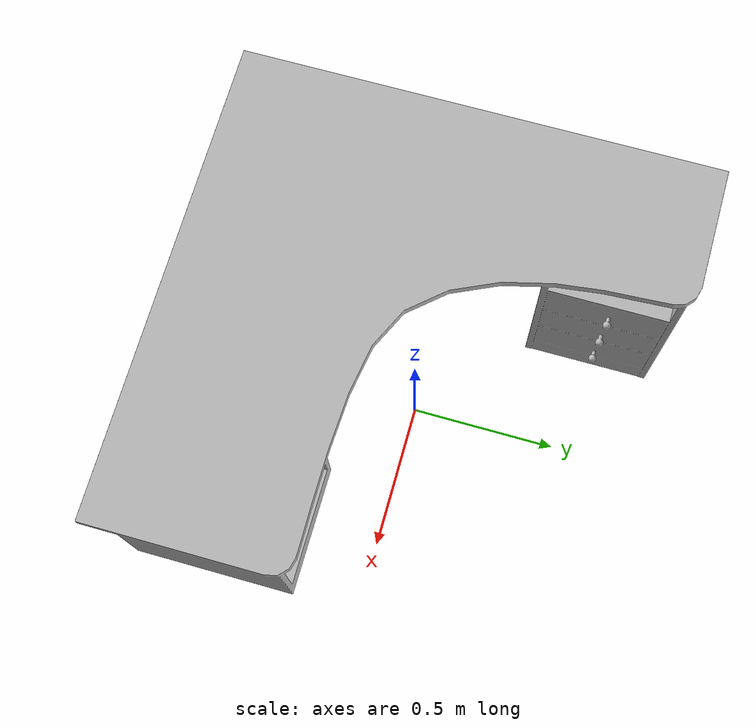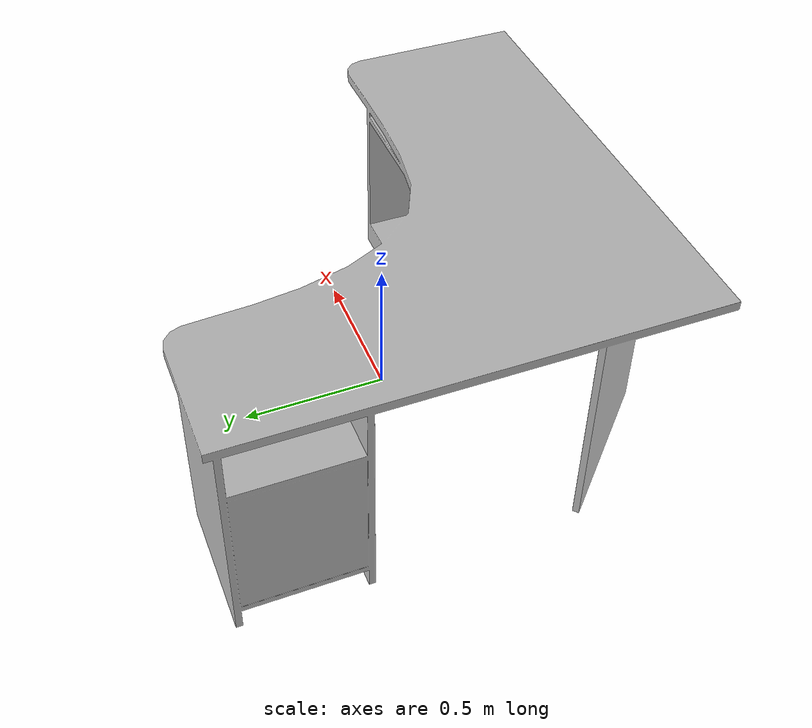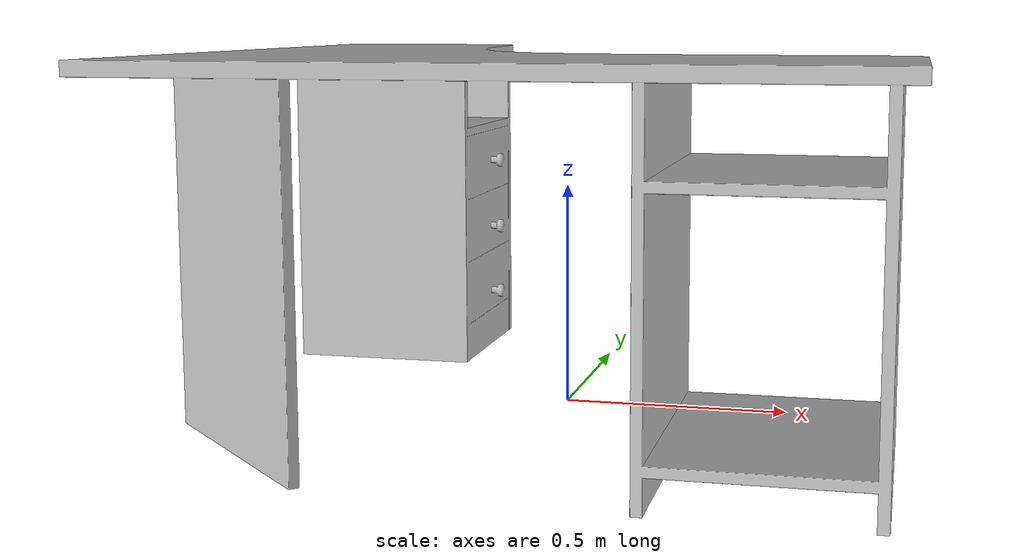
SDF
<?xml version='1.0'?>
<sdf version='1.4'>
  <model name='294'>
    <pose>0 0 0 0 0 0</pose>
    <static>true</static>
    <link name='link'>
      <collision name='collision'>
        <pose>0 0 0 0 0 0</pose>
        <geometry>
          <box>
            <size>1.57989 1.57963 2</size>
          </box>
        </geometry>
      </collision>
      <visual name='visual'>
        <pose>0 0 0 0 0 0</pose>
        <geometry>
          <mesh><uri>model://294/294.dae</uri></mesh>
        </geometry>
      </visual>
    </link>
  </model>
</sdf>
